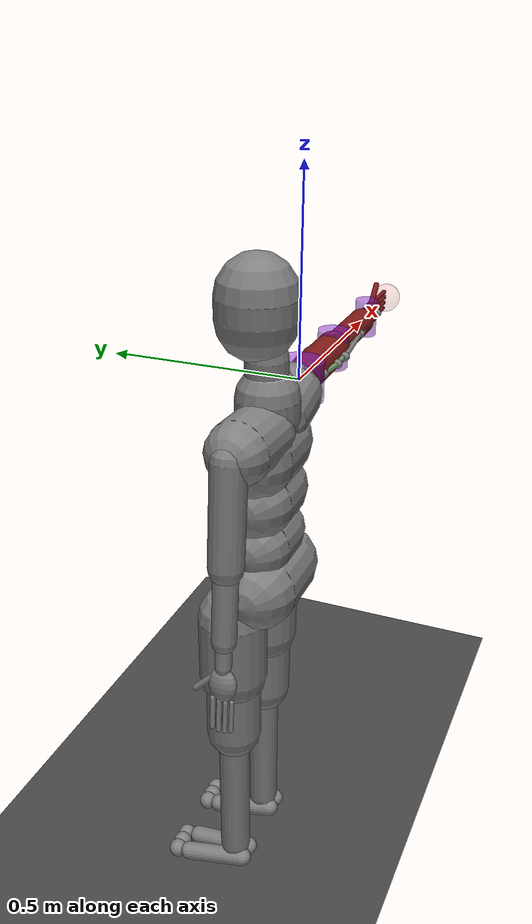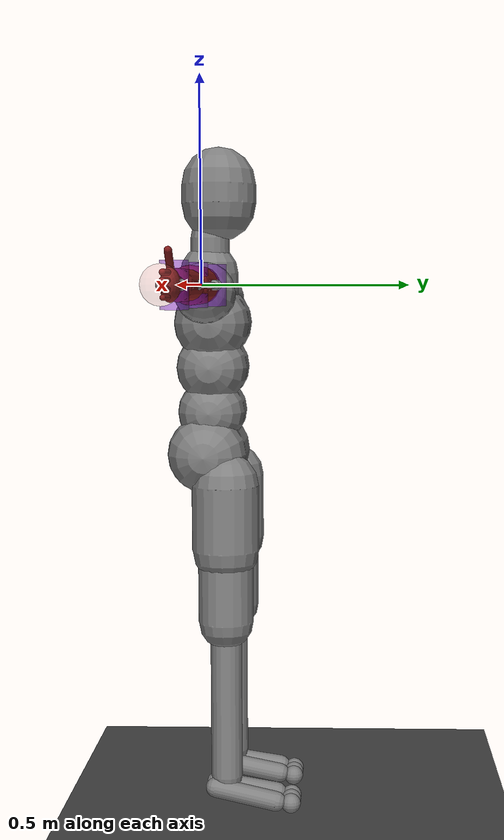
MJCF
<mujoco model="2-link arm joint torque control">
  <!-- Defining how equations of motions and constraints are solved -->
  <option timestep="0.005" iterations="50" solver="Newton" tolerance="1e-10"/>

  <default>
    <!--
    Values for attributes defined here are applied for all elements matching the kind of element.
    So all joints defined will be hinge joints by default. This can simplify the XML text.
    -->
    <joint type="hinge" pos="0 0 0" axis="0 0 1" limited="true" range="-5 170" damping="0.5" armature="0.0001"/>
    <site size="0.012" />
  </default>

  <!--
  This is where the physical elements will be defined.
  The worldbody is the root element, all other rigid bodies are its children.
  -->
  <worldbody>

    <!--
    This is a rigid body. It can have children bodies of its own nested inside.
    The child elements' position is defined in relation to this one's.
    -->

    <site name="s0" pos="-0.15 0 0" />
    <site name="x0" pos="0.05 -0.1 0"  rgba="0 .7 0 1" group="4"/>
    <site name="f0" pos="-0.05 0.1 0"  rgba="0 .7 0 1" group="4"/>
    <body name="upper arm" pos="0 0 0">

      <!--
      A "geom" defines a volume or surface that can't be penetrated by other geoms, and determines
      mass and inertia as well.
      -->
      <geom name="upper arm" mass="1" type="capsule" size="0.045" fromto="0 0 0  0.25 0 0" rgba=".5 .1 .1 1"/>

      <!-- Geom used for wrapping for tendons -->
      <geom name="shoulder" type="cylinder" pos="0 0 0" size=".06 .05" rgba=".5 .1 .8 .5" mass="0" group="1"/>

      <joint name="shoulder" range="-80 180"/>

      <site name="s1" pos="0.06 0.04 0" />
      <site name="s2" pos="0.06 -0.04 0" />
      <site name="s3" pos="0.2 0.05 0" />
      <site name="s4" pos="0.2 -0.05 0" />
      <site name="s5" pos="0.14 0.05 0" />
      <site name="s6" pos="0.14 -0.05 0" />
      <site name="x1" pos="0.35 -0.05 0"  rgba="0 .7 0 1" group="4"/>

      <body name="forearm" pos="0.25 0 0">
        <geom name="forearm" mass="2" type="capsule" size="0.035" fromto="0 0 0  0.25 0 0" rgba=".5 .1 .1 1"/>
        <!-- Geom used for wrapping for tendons -->
        <geom name="elbow" type="cylinder" pos="0 0 0" size=".04 .05" rgba=".5 .1 .8 .5" mass="0" group="1"/>
        <joint name="elbow" range="0 150"/>
          <body  name="wrist_body" pos="0.25 0 0" euler="-90 0 90">
              <geom density="1000" type="capsule" size="0.02000001 0.03" pos="1.880135E-09 -0.03 -3.279598E-08" quat="4.003268E-08 -4.391836E-08 -0.7071071 -0.7071071" priority="0" contype="0" conaffinity="0" group="2" condim="1" solmix="1" solref="0.015 1" rgba=".5 .1 .1 1" solimp="0.99 0.99 0.003" margin="0" gap="0" friction="0.7 0.005 0.0001" name="rwrist_91" />
              <body pos="0 -0.09076759 0" quat="-1 0 0 0" name="hand">
                <joint name="wrist" axis="-1 0 0" pos="0 0.05 0" damping="0.01" armature="0.0001" range="-30 70"/>
                <geom name="wrist" type="cylinder" pos="0 0.05 0" size=".03 .05" euler="0 90 -90" rgba=".5 .1 .8 .5" mass="0" group="1"/>
                <geom density="1000" type="ellipsoid" size="0.03500002 0.02000001 0.045" pos="3.469804E-09 -0.01675202 -3.877605E-08" quat="4.003268E-08 -4.391836E-08 -0.7071071 -0.7071071" priority="0" contype="0" conaffinity="0" group="2" rgba=".5 .1 .1 1" condim="3" solmix="1" solref="0.015 1" solimp="0.98 0.98 0.001" margin="0" gap="0" friction="1 0.005 0.0001" name="rhand_95" />
                <body name="tip" pos="0 -0.175 0"/>
                <body pos="-6.475558E-09 -0.06500006 1.90359E-08" quat="-1 0 0 0" name="rfingers_96">
                  <site name="p0" pos=" 0 0.07 0.02"/>
                  <site name="p1" pos=" 0 0.07 -0.02"/>
                  <geom density="1000" type="capsule" size="0.006500002 0.04" pos="-0.02399999 -0.02500005 -4.555073E-08" quat="0.7071071 -0.7071071 4.391836E-08 4.003268E-08" priority="0" contype="0" conaffinity="0" group="2" condim="3" rgba=".5 .1 .1 1" solmix="1" solref="0.015 1" solimp="0.98 0.98 0.001" margin="0" gap="0" friction="1 0.005 0.0001" name="rfinger0_101" />
                  <geom density="1000" type="capsule" size="0.006500002 0.04" pos="-0.00799998 -0.02999995 -3.565628E-10" quat="0.7071071 -0.7071071 4.391836E-08 4.003268E-08" priority="0" contype="0" conaffinity="0" group="2" condim="3" rgba=".5 .1 .1 1" solmix="1" solref="0.015 1" solimp="0.98 0.98 0.001" margin="0" gap="0" friction="1 0.005 0.0001" name="rfinger1_102" />
                  <geom density="1000" type="capsule" size="0.006000001 0.04" pos="0.007999999 -0.03000007 -5.897357E-09" quat="0.7071071 -0.7071071 4.391836E-08 4.003268E-08" priority="0" contype="0" conaffinity="0" group="2" condim="3" rgba=".5 .1 .1 1" solmix="1" solref="0.015 1" solimp="0.98 0.98 0.001" margin="0" gap="0" friction="1 0.005 0.0001" name="rfinger2_103" />
                  <geom density="1000" type="capsule" size="0.005500001 0.04" pos="0.02400001 -0.02500007 3.095344E-08" quat="0.7071071 -0.7071071 4.391836E-08 4.003268E-08" priority="0" contype="0" conaffinity="0" group="2" condim="3" rgba=".5 .1 .1 1" solmix="1" solref="0.015 1" solimp="0.98 0.98 0.001" margin="0" gap="0" friction="1 0.005 0.0001" name="rfinger3_104" />
                </body>
                <body pos="-0.025 6.70552E-09 -8.940694E-09" quat="0.92388 -4.930634E-08 6.000214E-08 -0.382683" name="rthumb_97">
                  <geom density="1000" type="capsule" size="0.008000004 0.03" pos="2.888915E-08 -0.03000006 -2.920286E-08" quat="3.642271E-08 6.018672E-09 -0.707107 -0.707107" priority="0" contype="0" conaffinity="0" group="2" rgba=".5 .1 .1 1"  condim="3" solmix="1" solref="0.015 1" solimp="0.98 0.98 0.001" margin="0" gap="0" friction="1 0.005 0.0001" name="rthumb_105" />
                </body>
              </body>
            <site name="s7" pos="0  0.11 0.03 " />
            <site name="s8" pos="0 0.11 -0.03  " />
            <site name="x2" pos="0 0.11 0.1  " group="4"/>
            <site name="x3" pos="0 0.11 -0.1  " group="4"/>
          </body>

      </body>
    </body>

    <!-- These two elements are necessary for clearer visualisation of spatial relationships. -->
    <geom name="floor" pos="0 0 -1.35" size="0 0 1" type="plane" material="matplane"/>
    <light directional="true" diffuse=".8 .8 .8" specular=".2 .2 .2" pos="0 0 5" dir="0 0 -1"/>

    <body name="IK" mocap="true" pos="0.75 0 0">
        <geom type="sphere" size="0.04" contype="0" conaffinity="0" rgba="0.8 0.4 0.4 0.2"/>
    </body>
  </worldbody>

   <tendon>
    <spatial name="SF" width="0.0069" springlength="0 10" >
      <site site="s0"/>
      <geom geom="shoulder" sidesite="f0"/>
      <site site="s1"/>
    </spatial>

    <spatial name="SE" width="0.0069">
      <site site="s0"/>
      <geom geom="shoulder" sidesite="x0"/>
      <site site="s2"/>
    </spatial>

    <spatial name="EF" width="0.0069">
      <site site="s3"/>
      <geom geom="elbow"/>
      <site site="s7"/>
    </spatial>

    <spatial name="EE" width="0.0069">
      <site site="s4"/>
      <geom geom="elbow" sidesite="x1"/>
      <site site="s8"/>
    </spatial>

    <spatial name="BF" width="0.0069" rgba=".4 .6 .4 1">
      <site site="s0"/>
      <geom geom="shoulder" sidesite="f0"/>
      <site site="s5"/>
      <geom geom="elbow"/>
      <site site="s7"/>
    </spatial>

    <spatial name="BE" width="0.0069" rgba=".4 .6 .4 1">
      <site site="s0"/>
      <geom geom="shoulder" sidesite="x0"/>
      <site site="s6"/>
      <geom geom="elbow" sidesite="x1"/>
      <site site="s8"/>
    </spatial>

     <spatial name="WF" width="0.0069" rgba=".4 .6 .4 1">
      <site site="s7"/>
      <geom geom="wrist" sidesite="x2"/>
      <site site="p0"/>
    </spatial>

     <spatial name="WE" width="0.0069" rgba=".4 .6 .4 1">
      <site site="s8"/>
      <geom geom="wrist" sidesite="x3"/>
      <site site="p1"/>
    </spatial>
  </tendon>

    <actuator>
    <motor name="SF" tendon="SF" ctrlrange="-100 100"/>
    <motor name="SE" tendon="SE" ctrlrange="-100 100"/>
    <motor name="EF" tendon="EF" ctrlrange="-100 100"/>
    <motor name="EE" tendon="EE" ctrlrange="-100 100"/>
    <motor name="BF" tendon="BF" ctrlrange="-100 100"/>
    <motor name="BE" tendon="BE" ctrlrange="-100 100"/>
    <motor name="WF" tendon="WF" ctrlrange="-100 100"/>
    <motor name="WE" tendon="WE" ctrlrange="-100 100"/>
  </actuator>

  <!--
  Add humanoid model, for spatial reference.
  -->
  <include file="../../xml/cmu_model.xml"/>

  <!--
  The elements below are for visuals only, defining textures and postprocessing.
  -->

  <asset>
    <texture type="skybox" builtin="gradient" rgb1="0.6 0.6 0.6" rgb2="0 0 0" width="512" height="512"/>
    <texture name="texplane" type="2d" builtin="checker" rgb1=".25 .25 .25" rgb2=".3 .3 .3" width="512" height="512" mark="cross" markrgb=".8 .8 .8"/>
    <material name="matplane" reflectance="0.3" texture="texplane" texrepeat="1 1" texuniform="true"/>
  </asset>

  <visual>
    <rgba haze=".3 .3 .3 1"/>
  </visual>
</mujoco>

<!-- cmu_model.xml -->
<!--
This model is only used as a visual reference to illustrate a humanoid body in some of the xml files.
-->

<mujoco>
  <worldbody>
    <body pos="-0.208 -0.004 -0.379" quat="-1 0 0 0" name="K_root_9">
      <body pos="0 0 0" quat="0 0 0.7071068 0.7071068" name="K_lhipjoint_10">
        <geom density="10" type="capsule" size="0.008000004 0.02187361" pos="0.05096854 -0.04590372 0.02472301" quat="0.5708001 -0.5666021 -0.5942641 0" priority="0" contype="0" conaffinity="0" group="2" condim="1" solmix="1" solref="0.015 1" solimp="0.99 0.99 0.003" margin="0" gap="0" friction="0.7 0.005 0.0001" name="K_lhipjoint_15" />
        <body pos="0.1019371 -0.09180747 0.04944616" quat="-1 0 0 0" name="K_lfemur_16">

          <geom density="0" type="capsule" size="0.08500003 0.083" pos="0 -0.115473 3.61172E-08" quat="0.6963643 -0.6963643 -0.1227881 -0.1227881" priority="0" contype="0" conaffinity="0" group="2" condim="1" solmix="1" solref="0.015 1" solimp="0.99 0.99 0.003" margin="0" gap="0" friction="0.7 0.005 0.0001" name="K_lfemur_upper_23" />
          <geom density="1000" type="capsule" size="0.07000002 0.182226" pos="0 -0.202473 4.648841E-08" quat="0.6963643 -0.6963643 -0.1227881 -0.1227881" priority="0" contype="0" conaffinity="0" group="2" condim="1" solmix="1" solref="0.015 1" solimp="0.99 0.99 0.003" margin="0" gap="0" friction="0.7 0.005 0.0001" name="K_lfemur_24" />
          <body pos="0 -0.4049452 1.302296E-07" quat="-1 0 0 0" name="K_ltibia_25">

            <geom density="1000" type="capsule" size="0.04000001 0.182561" pos="0 -0.202846 2.418112E-08" quat="0.6963643 -0.6963643 -0.1227881 -0.1227881" priority="0" contype="0" conaffinity="0" group="2" condim="1" solmix="1" solref="0.015 1" solimp="0.99 0.99 0.003" margin="0" gap="0" friction="0.7 0.005 0.0001" name="K_ltibia_35" />
            <body pos="0 -0.415693 1.091591E-07" quat="0.7071069 -0.7071069 0 0" name="K_lfoot_36">

              <geom density="1000" type="capsule" size="0.02500003 0.08000004" pos="-0.02700002 -0.04999997 -0.01138783" quat="0.7672563 -0.6405111 0.02306491 -0.02306581" priority="0" contype="0" conaffinity="1" group="2" condim="3" solmix="1" solref="0.015 1" solimp="0.98 0.98 0.001" margin="0" gap="0" friction="1 0.005 0.0001" name="K_lfoot_47" />
              <geom density="1000" type="capsule" size="0.02500003 0.08000004" pos="0.02700002 -0.04999997 -0.01138783" quat="0.7288731 -0.5939951 -0.240743 -0.240743" priority="0" contype="0" conaffinity="1" group="2" condim="3" solmix="1" solref="0.015 1" solimp="0.98 0.98 0.001" margin="0" gap="0" friction="1 0.005 0.0001" name="K_lfoot_ch_48" />
              <body pos="0 -0.1563721 -0.02277565" quat="-1 0 0 0" name="K_ltoes_49">

                <geom density="1000" type="sphere" size="0.02500002" pos="0 -0.009999995 -0.00999999" quat="-1 0 0 0" priority="0" contype="0" conaffinity="1" group="2" condim="3" solmix="1" solref="0.015 1" solimp="0.98 0.98 0.001" margin="0" gap="0" friction="1 0.005 0.0001" name="K_ltoes0_67" />
                <geom density="1000" type="sphere" size="0.02500002" pos="0.03000002 -0.009999995 -0.00999999" quat="-1 0 0 0" priority="0" contype="0" conaffinity="1" group="2" condim="3" solmix="1" solref="0.015 1" solimp="0.98 0.98 0.001" margin="0" gap="0" friction="1 0.005 0.0001" name="K_ltoes1_68" />
                <geom density="1000" type="sphere" size="0.02500002" pos="-0.03000002 -0.009999995 -0.00999999" quat="-1 0 0 0" priority="0" contype="0" conaffinity="1" group="2" condim="3" solmix="1" solref="0.015 1" solimp="0.98 0.98 0.001" margin="0" gap="0" friction="1 0.005 0.0001" name="K_ltoes2_69" />
              </body>
            </body>
          </body>
        </body>
      </body>
      <body pos="0 0 0" quat="0 0 0.7071068 0.7071068" name="K_rhipjoint_11">
        <geom density="10" type="capsule" size="0.008000002 0.02187361" pos="-0.05096852 -0.04590372 0.02472301" quat="0.5748562 -0.5475942 0.6080142 0" priority="0" contype="0" conaffinity="0" group="2" condim="1" solmix="1" solref="0.015 1" solimp="0.99 0.99 0.003" margin="0" gap="0" friction="0.7 0.005 0.0001" name="K_rhipjoint_17" />
        <body pos="-0.1019371 -0.09180744 0.04944613" quat="-1 0 0 0" name="K_rfemur_18">

          <geom density="0" type="capsule" size="0.08500003 0.083" pos="0 -0.115473 3.61172E-08" quat="0.6963643 -0.6963643 0.1227881 0.1227881" priority="0" contype="0" conaffinity="0" group="2" condim="1" solmix="1" solref="0.015 1" solimp="0.99 0.99 0.003" margin="0" gap="0" friction="0.7 0.005 0.0001" name="K_rfemur_upper_27" />
          <geom density="1000" type="capsule" size="0.07000002 0.182226" pos="0 -0.2024731 4.648841E-08" quat="0.6963643 -0.6963643 0.1227881 0.1227881" priority="0" contype="0" conaffinity="0" group="2" condim="1" solmix="1" solref="0.015 1" solimp="0.99 0.99 0.003" margin="0" gap="0" friction="0.7 0.005 0.0001" name="K_rfemur_28" />
          <body pos="0 -0.4049451 1.004273E-07" quat="-1 0 0 0" name="K_rtibia_29">

            <geom density="1000" type="capsule" size="0.04000001 0.182561" pos="0 -0.2028461 2.418113E-08" quat="0.6963643 -0.6963643 0.1227881 0.1227881" priority="0" contype="0" conaffinity="0" group="2" condim="1" solmix="1" solref="0.015 1" solimp="0.99 0.99 0.003" margin="0" gap="0" friction="0.7 0.005 0.0001" name="K_rtibia_38" />
            <body pos="0 -0.4156931 1.091591E-07" quat="0.7071069 -0.7071069 0 0" name="K_rfoot_39">

              <geom density="1000" type="capsule" size="0.02500002 0.08000004" pos="-0.02700002 -0.05000003 -0.01138783" quat="0.7352074 -0.5863352 0.2405011 0.2405011" priority="0" contype="0" conaffinity="1" group="2" condim="3" solmix="1" solref="0.015 1" solimp="0.98 0.98 0.001" margin="0" gap="0" friction="1 0.005 0.0001" name="K_rfoot_52" />
              <geom density="1000" type="capsule" size="0.02500002 0.08000002" pos="0.02700003 -0.05000003 -0.01138783" quat="0.7731252 -0.6332311 -0.02545851 0.02545841" priority="0" contype="0" conaffinity="1" group="2" condim="3" solmix="1" solref="0.015 1" solimp="0.98 0.98 0.001" margin="0" gap="0" friction="1 0.005 0.0001" name="K_rfoot_ch_53" />
              <body pos="0 -0.1563721 -0.02277565" quat="-1 0 0 0" name="K_rtoes_54">

                <geom density="1000" type="sphere" size="0.02500002" pos="0 -0.009999995 -0.00999999" quat="-1 0 0 0" priority="0" contype="0" conaffinity="1" group="2" condim="3" solmix="1" solref="0.015 1" solimp="0.98 0.98 0.001" margin="0" gap="0" friction="1 0.005 0.0001" name="K_rtoes0_71" />
                <geom density="1000" type="sphere" size="0.02500002" pos="0.03000002 -0.009999995 -0.00999999" quat="-1 0 0 0" priority="0" contype="0" conaffinity="1" group="2" condim="3" solmix="1" solref="0.015 1" solimp="0.98 0.98 0.001" margin="0" gap="0" friction="1 0.005 0.0001" name="K_rtoes1_72" />
                <geom density="1000" type="sphere" size="0.02500002" pos="-0.03000001 -0.009999995 -0.00999999" quat="-1 0 0 0" priority="0" contype="0" conaffinity="1" group="2" condim="3" solmix="1" solref="0.015 1" solimp="0.98 0.98 0.001" margin="0" gap="0" friction="1 0.005 0.0001" name="K_rtoes2_73" />
              </body>
            </body>
          </body>
        </body>
      </body>
      <geom density="1000" type="capsule" size="0.1 0.07" pos="0 0 -0.05000001" quat="-0.5 -0.5 -0.5 -0.5" priority="0" contype="0" conaffinity="0" group="2" condim="1" solmix="1" solref="0.015 1" solimp="0.99 0.99 0.003" margin="0" gap="0" friction="0.7 0.005 0.0001" name="K_root_geom_13" />
      <body pos="0 0 0" quat="0 0 0.7071068 0.7071068" name="K_lowerback_14">

        <geom density="1000" type="capsule" size="0.08500004 0.04540022" pos="0.002829314 0.05660651 0.009999989" quat="0.7071069 0 0.7071069 0" priority="0" contype="0" conaffinity="0" group="2" condim="1" solmix="1" solref="0.015 1" solimp="0.99 0.99 0.003" margin="0" gap="0" friction="0.7 0.005 0.0001" name="K_lowerback_20" />
        <body pos="0.0005658568 0.113213 -0.008053012" quat="-1 0 0 0" name="K_upperback_21">
          <geom density="1000" type="capsule" size="0.09000005 0.04542623" pos="0.0002562702 0.05678022 0.02" quat="0.7071069 0 0.7071069 0" priority="0" contype="0" conaffinity="0" group="2" condim="1" solmix="1" solref="0.015 1" solimp="0.99 0.99 0.003" margin="0" gap="0" friction="0.7 0.005 0.0001" name="K_upperback_32" />
          <body pos="0.0005125405 0.11356 0.0009368002" quat="-1 0 0 0" name="K_thorax_33">

            <geom density="1000" type="capsule" size="0.09500004 0.05702063" pos="0 0.05697251 0.01999999" quat="0.7071069 0 0.7071069 0" priority="0" contype="0" conaffinity="0" group="2" condim="1" solmix="1" solref="0.015 1" solimp="0.99 0.99 0.003" margin="0" gap="0" friction="0.7 0.005 0.0001" name="K_thorax_41" />
            <body pos="0 0.113945 0.004680338" quat="-1 0 0 0" name="K_lowerneck_42">

              <geom density="500" type="capsule" size="0.07500006 0.02279232" pos="-0.001650721 0.04524014 0.005343582" quat="0.7071069 0.7071069 0 0" priority="0" contype="1" conaffinity="1" group="2" condim="1" solmix="1" solref="0.015 1" solimp="0.99 0.99 0.003" margin="0" gap="0" friction="0.7 0.005 0.0001" name="K_lowerneck_56" />
              <body pos="-0.003301442 0.09048013 0.01068716" quat="-1 0 0 0" name="K_upperneck_57">

                <geom density="500" type="capsule" size="0.05000004 0.02252722" pos="0.0005008728 0.04499561 -0.002246445" quat="0.7071069 0.7071069 0 0" priority="0" contype="1" conaffinity="1" group="2" condim="1" solmix="1" solref="0.015 1" solimp="0.99 0.99 0.003" margin="0" gap="0" friction="0.7 0.005 0.0001" name="K_upperneck_75" />
                <body pos="0.001001761 0.13 -0.004492865" quat="-1 0 0 0" name="K_head_76">

                  <geom density="800" type="capsule" size="0.09500007 0.02410402" pos="0.0003414602 0.04818398 0.02499997" quat="0.7071069 0.7071069 0 0" priority="0" contype="0" conaffinity="0" group="2" condim="1" solmix="1" solref="0.015 1" solimp="0.99 0.99 0.003" margin="0" gap="0" friction="0.7 0.005 0.0001" name="K_head_84" />
                </body>
              </body>
            </body>
            <body pos="0 0.113945 0.004680338" quat="-0.9810503 0 0 0.193754" name="K_lclavicle_43">
              <geom density="500" type="capsule" size="0.07500003 0.06000002" pos="0.09188176 0.03826361 0.005357058" quat="0.6879708 0.278988 -0.6699718 -8.640231E-10" priority="0" contype="1" conaffinity="1" group="2" condim="1" solmix="1" solref="0.015 1" solimp="0.99 0.99 0.003" margin="0" gap="0" friction="0.7 0.005 0.0001" name="K_lclavicle_60" />
              <body pos="0.1800001 0.09000004 0.01071411" quat="-0.2512589 -0.2317584 0.9377106 -0.06209913" name="K_lhumerus_61">

                <geom density="1000" type="capsule" size="0.042 0.124579" pos="-6.143738E-09 -0.138421 2.840297E-08" quat="0.6123726 -0.6123727 0.3535533 0.3535534" priority="0" contype="0" conaffinity="0" group="2" condim="1" solmix="1" solref="0.015 1" solimp="0.99 0.99 0.003" margin="0" gap="0" friction="0.7 0.005 0.0001" name="K_lhumerus_78" />
                <body pos="3.413431E-08 -0.2768431 4.919416E-08" quat="-1 0 0 0" name="K_lradius_79">

                  <geom density="1000" type="capsule" size="0.03 0.08169109" pos="6.397308E-09 -0.09076791 1.018815E-08" quat="0.6123726 -0.6123727 0.3535533 0.3535534" priority="0" contype="0" conaffinity="0" group="2" condim="1" solmix="1" solref="0.015 1" solimp="0.99 0.99 0.003" margin="0" gap="0" friction="0.7 0.005 0.0001" name="K_lradius_86" />
                  <body pos="-1.908565E-08 -0.1815361 1.970062E-09" quat="-0.5000004 -2.481983E-09 0.8660256 -7.237219E-09" name="K_lwrist_87">
                    <geom density="1000" type="capsule" size="0.02000001 0.03" pos="1.880135E-09 -0.03 -3.279598E-08" quat="4.003268E-08 -4.391836E-08 -0.7071071 -0.7071071" priority="0" contype="0" conaffinity="0" group="2" condim="1" solmix="1" solref="0.015 1" solimp="0.99 0.99 0.003" margin="0" gap="0" friction="0.7 0.005 0.0001" name="K_lwrist_91" />
                    <body pos="-9.784539E-09 -0.09076759 3.994287E-08" quat="-1 0 0 0" name="K_lhand_92">
                      <geom density="1000" type="ellipsoid" size="0.03500002 0.02000001 0.045" pos="3.469804E-09 -0.01675202 -3.877605E-08" quat="4.003268E-08 -4.391836E-08 -0.7071071 -0.7071071" priority="0" contype="0" conaffinity="0" group="2" condim="3" solmix="1" solref="0.015 1" solimp="0.98 0.98 0.001" margin="0" gap="0" friction="1 0.005 0.0001" name="K_lhand_95" />
                      <body pos="-6.475558E-09 -0.07500006 1.90359E-08" quat="-1 0 0 0" name="K_lfingers_96">
                        <geom density="1000" type="capsule" size="0.006500002 0.04" pos="-0.02399999 -0.02500005 -4.555073E-08" quat="0.7071071 -0.7071071 4.391836E-08 4.003268E-08" priority="0" contype="0" conaffinity="0" group="2" condim="3" solmix="1" solref="0.015 1" solimp="0.98 0.98 0.001" margin="0" gap="0" friction="1 0.005 0.0001" name="K_lfinger0_101" />
                        <geom density="1000" type="capsule" size="0.006500002 0.04" pos="-0.00799998 -0.02999995 -3.565628E-10" quat="0.7071071 -0.7071071 4.391836E-08 4.003268E-08" priority="0" contype="0" conaffinity="0" group="2" condim="3" solmix="1" solref="0.015 1" solimp="0.98 0.98 0.001" margin="0" gap="0" friction="1 0.005 0.0001" name="K_lfinger1_102" />
                        <geom density="1000" type="capsule" size="0.006000001 0.04" pos="0.007999999 -0.03000007 -5.897357E-09" quat="0.7071071 -0.7071071 4.391836E-08 4.003268E-08" priority="0" contype="0" conaffinity="0" group="2" condim="3" solmix="1" solref="0.015 1" solimp="0.98 0.98 0.001" margin="0" gap="0" friction="1 0.005 0.0001" name="K_lfinger2_103" />
                        <geom density="1000" type="capsule" size="0.005500001 0.04" pos="0.02400001 -0.02500007 3.095344E-08" quat="0.7071071 -0.7071071 4.391836E-08 4.003268E-08" priority="0" contype="0" conaffinity="0" group="2" condim="3" solmix="1" solref="0.015 1" solimp="0.98 0.98 0.001" margin="0" gap="0" friction="1 0.005 0.0001" name="K_lfinger3_104" />
                      </body>
                      <body pos="-0.025 6.70552E-09 -8.940694E-09" quat="0.92388 -4.930634E-08 6.000214E-08 -0.382683" name="K_lthumb_97">
                        <geom density="1000" type="capsule" size="0.008000004 0.03" pos="2.888915E-08 -0.03000006 -2.920286E-08" quat="3.642271E-08 6.018672E-09 -0.707107 -0.707107" priority="0" contype="0" conaffinity="0" group="2" condim="3" solmix="1" solref="0.015 1" solimp="0.98 0.98 0.001" margin="0" gap="0" friction="1 0.005 0.0001" name="K_lthumb_105" />
                      </body>
                    </body>
                  </body>
                </body>
              </body>
            </body>
            <body pos="0 0.113945 0.004680338" quat="-0.991445 0 0 -0.1305263" name="K_rclavicle_44">
              <geom density="500" type="capsule" size="0.07500002 0.06000001" pos="-0.09188176 0.03826362 0.005357056" quat="0.6879708 0.2789879 0.6699718 1.381872E-08" priority="0" contype="0" conaffinity="0" group="2" condim="1" solmix="1" solref="0.015 1" solimp="0.99 0.99 0.003" margin="0" gap="0" friction="0.7 0.005 0.0001" name="K_rclavicle_64" />
              <geom density="500" type="capsule" size="0.0300002 0.01000001" pos="-0.09188176 0.03826362 -0.025357056" quat="0.6879708 0.2789879 0.6699718 1.381872E-08" priority="0" contype="1" conaffinity="1" group="2" condim="1" solmix="1" solref="0.015 1" solimp="0.99 0.99 0.003" margin="0" gap="0" friction="0.7 0.005 0.0001" name="K_rclavicle_dummy" rgba="0 0 0 0"/>
            </body>
          </body>
        </body>
      </body>
    </body>
  </worldbody>
  <contact />
  <tendon />

  <actuator />
  <sensor />
  <asset />
</mujoco>
